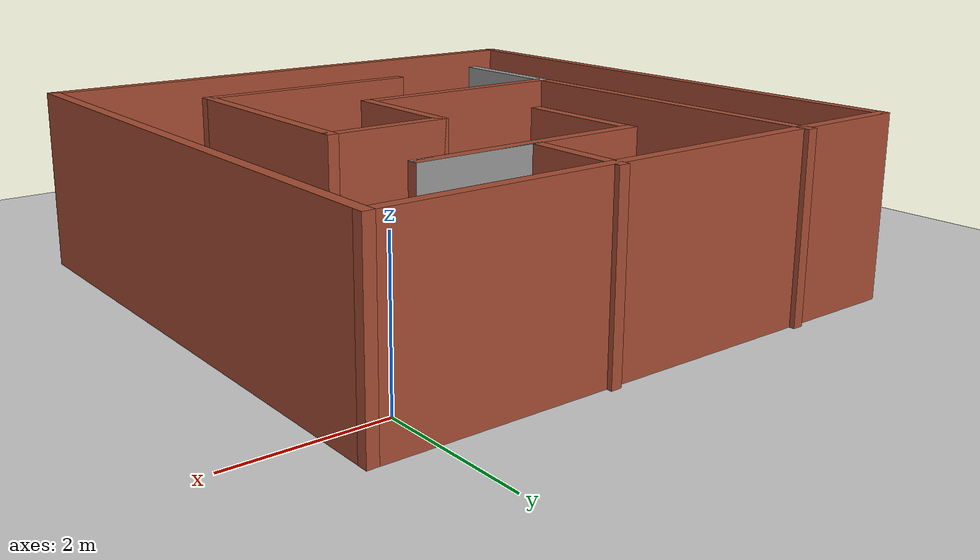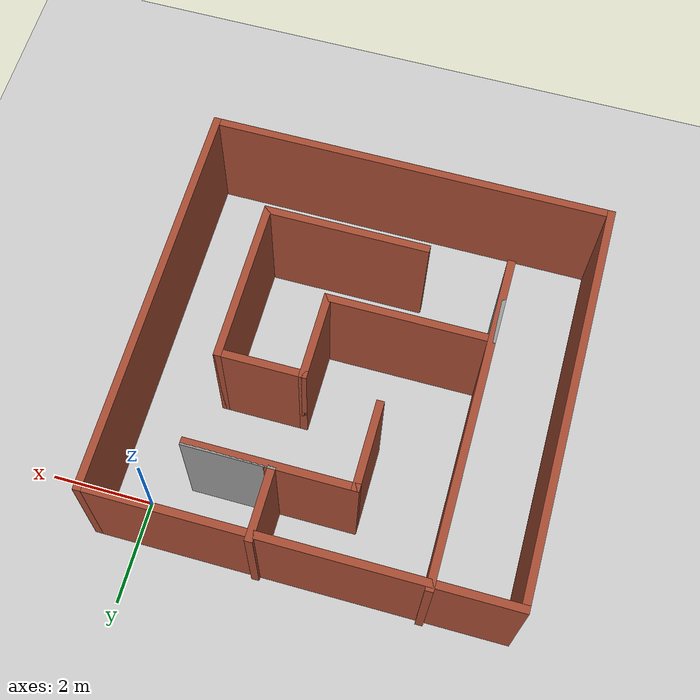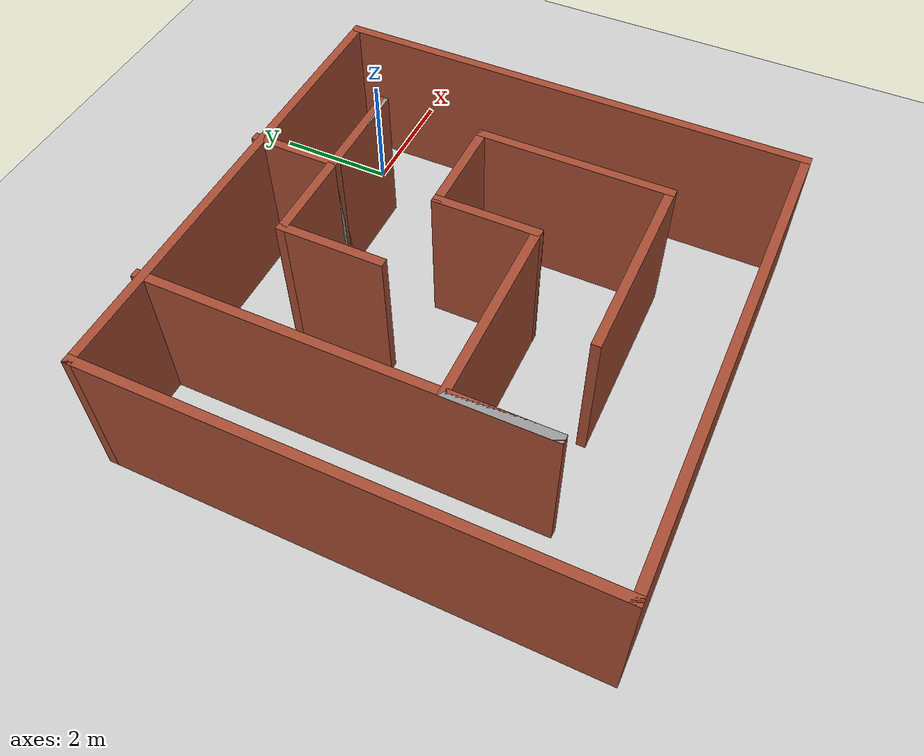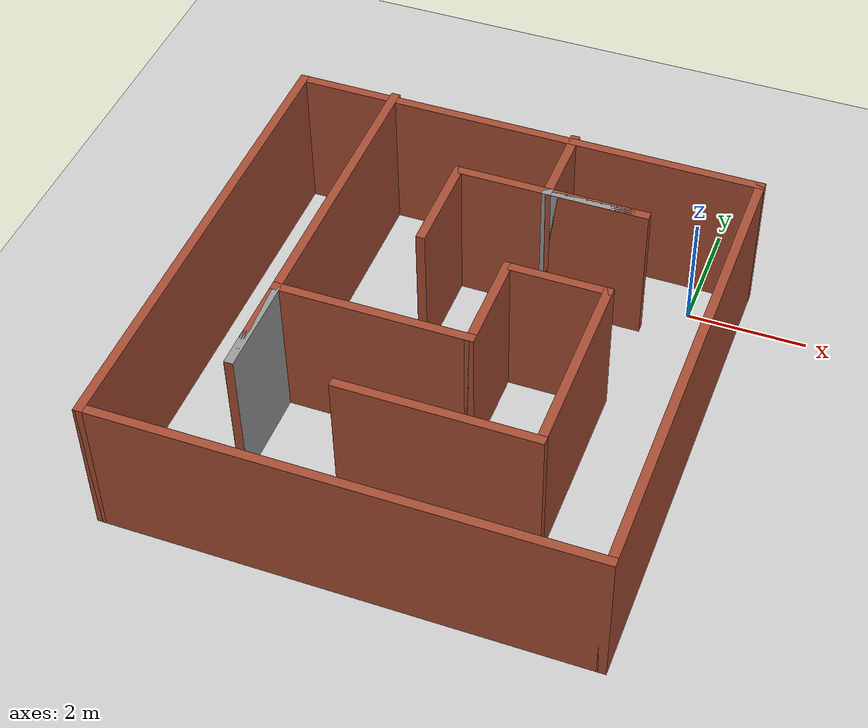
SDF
<sdf version="1.7">
 <world name="default">
  <light name="sun" type="directional">
   <pose>0 0 10 0 -0 0</pose>
   <diffuse>0.8 0.8 0.8 1</diffuse>
   <specular>0.2 0.2 0.2 1</specular>
   <attenuation>
    <range>1000</range>
    <constant>0.9</constant>
    <linear>0.01</linear>
    <quadratic>0.001</quadratic>
   </attenuation>
   <direction>-0.5 0.1 -0.9</direction>
   <spot><inner_angle>0</inner_angle><outer_angle>0</outer_angle><falloff>0</falloff></spot>
  </light>
  <model name="ground_plane">
   <static>1</static>
   <link name="link">
    <collision name="collision">
     <geometry><plane><normal>0 0 1</normal><size>100 100</size></plane></geometry>
     <surface>
      <contact><collide_bitmask>65535</collide_bitmask></contact>
      <friction><ode><mu>100</mu><mu2>50</mu2></ode></friction>
     </surface>
    </collision>
    <visual name="visual">
     <cast_shadows>0</cast_shadows>
     <geometry><plane><normal>0 0 1</normal><size>100 100</size></plane></geometry>
     <material>
      <script><uri>file://media/materials/scripts/gazebo.material</uri><name>Gazebo/Grey</name></script>
     </material>
    </visual>
   </link>
  </model>
  <gravity>0 0 -9.8</gravity>
  <magnetic_field>6e-06 2.3e-05 -4.2e-05</magnetic_field>
  <atmosphere type="adiabatic"/>
  <physics type="ode">
   <max_step_size>0.001</max_step_size>
   <real_time_factor>1</real_time_factor>
   <real_time_update_rate>1000</real_time_update_rate>
  </physics>
  <scene><ambient>0.4 0.4 0.4 1</ambient><background>0.7 0.7 0.7 1</background><shadows>1</shadows></scene>
  <spherical_coordinates>
   <surface_model>EARTH_WGS84</surface_model>
   <latitude_deg>0</latitude_deg>
   <longitude_deg>0</longitude_deg>
   <elevation>0</elevation>
   <heading_deg>0</heading_deg>
  </spherical_coordinates>
  <model name="Untitled">
   <pose>-3.15 -3.15 0 0 -0 0</pose>
   <link name="Wall_0">
    <collision name="Wall_0_Collision">
     <geometry><box><size>8 0.15 2.5</size></box></geometry>
     <pose>0 0 1.25 0 -0 0</pose>
    </collision>
    <visual name="Wall_0_Visual">
     <pose>0 0 1.25 0 -0 0</pose>
     <geometry><box><size>8 0.15 2.5</size></box></geometry>
     <material>
      <script><uri>file://media/materials/scripts/gazebo.material</uri><name>Gazebo/Bricks</name></script>
      <ambient>1 1 1 1</ambient>
     </material>
     <meta><layer>0</layer></meta>
    </visual>
    <pose>-0 -3.96059 0 0 -0 0</pose>
   </link>
   <link name="Wall_10">
    <collision name="Wall_10_Collision">
     <geometry><box><size>3.25 0.15 2.5</size></box></geometry>
     <pose>0 0 1.25 0 -0 0</pose>
    </collision>
    <visual name="Wall_10_Visual">
     <pose>0 0 1.25 0 -0 0</pose>
     <geometry><box><size>3.25 0.15 2.5</size></box></geometry>
     <material>
      <script><uri>file://media/materials/scripts/gazebo.material</uri><name>Gazebo/Bricks</name></script>
      <ambient>1 1 1 1</ambient>
     </material>
     <meta><layer>0</layer></meta>
    </visual>
    <pose>-0.772493 -0.789411 0 0 -0 0</pose>
   </link>
   <link name="Wall_11">
    <collision name="Wall_11_Collision">
     <geometry><box><size>1.75 0.15 2.5</size></box></geometry>
     <pose>0 0 1.25 0 -0 0</pose>
    </collision>
    <visual name="Wall_11_Visual">
     <pose>0 0 1.25 0 -0 0</pose>
     <geometry><box><size>1.75 0.15 2.5</size></box></geometry>
     <material>
      <script><uri>file://media/materials/scripts/gazebo.material</uri><name>Gazebo/Bricks</name></script>
      <ambient>1 1 1 1</ambient>
     </material>
     <meta><layer>0</layer></meta>
    </visual>
    <pose>0.777507 0.010589 0 0 -0 1.5708</pose>
   </link>
   <link name="Wall_12">
    <collision name="Wall_12_Collision">
     <geometry><box><size>1.75 0.15 2.5</size></box></geometry>
     <pose>0 0 1.25 0 -0 0</pose>
    </collision>
    <visual name="Wall_12_Visual">
     <pose>0 0 1.25 0 -0 0</pose>
     <geometry><box><size>1.75 0.15 2.5</size></box></geometry>
     <material>
      <script><uri>file://media/materials/scripts/gazebo.material</uri><name>Gazebo/Bricks</name></script>
      <ambient>1 1 1 1</ambient>
     </material>
     <meta><layer>0</layer></meta>
    </visual>
    <pose>1.57751 0.810589 0 0 -0 0</pose>
   </link>
   <link name="Wall_13">
    <collision name="Wall_13_Collision">
     <geometry><box><size>3.25 0.15 2.5</size></box></geometry>
     <pose>0 0 1.25 0 -0 0</pose>
    </collision>
    <visual name="Wall_13_Visual">
     <pose>0 0 1.25 0 -0 0</pose>
     <geometry><box><size>3.25 0.15 2.5</size></box></geometry>
     <material>
      <script><uri>file://media/materials/scripts/gazebo.material</uri><name>Gazebo/Bricks</name></script>
      <ambient>1 1 1 1</ambient>
     </material>
     <meta><layer>0</layer></meta>
    </visual>
    <pose>2.37751 -0.739411 0 0 -0 -1.5708</pose>
   </link>
   <link name="Wall_14">
    <collision name="Wall_14_Collision">
     <geometry><box><size>3.25 0.15 2.5</size></box></geometry>
     <pose>0 0 1.25 0 -0 0</pose>
    </collision>
    <visual name="Wall_14_Visual">
     <pose>0 0 1.25 0 -0 0</pose>
     <geometry><box><size>3.25 0.15 2.5</size></box></geometry>
     <material>
      <script><uri>file://media/materials/scripts/gazebo.material</uri><name>Gazebo/Bricks</name></script>
      <ambient>1 1 1 1</ambient>
     </material>
     <meta><layer>0</layer></meta>
    </visual>
    <pose>0.827507 -2.28941 0 0 -0 3.14159</pose>
   </link>
   <link name="Wall_16">
    <collision name="Wall_16_Collision">
     <geometry><box><size>1.5 0.15 2.5</size></box></geometry>
     <pose>0 0 1.25 0 -0 0</pose>
    </collision>
    <visual name="Wall_16_Visual">
     <pose>0 0 1.25 0 -0 0</pose>
     <geometry><box><size>1.5 0.15 2.5</size></box></geometry>
     <material>
      <script><uri>file://media/materials/scripts/gazebo.material</uri><name>Gazebo/Bricks</name></script>
      <ambient>1 1 1 1</ambient>
     </material>
     <meta><layer>0</layer></meta>
    </visual>
    <pose>0.815224 3.28559 0 0 -0 -1.5708</pose>
   </link>
   <link name="Wall_17">
    <collision name="Wall_17_Collision">
     <geometry><box><size>0.15 0.15 2.5</size></box></geometry>
     <pose>0 0 1.25 0 -0 0</pose>
    </collision>
    <visual name="Wall_17_Visual">
     <pose>0 0 1.25 0 -0 0</pose>
     <geometry><box><size>0.15 0.15 2.5</size></box></geometry>
     <material>
      <script><uri>file://media/materials/scripts/gazebo.material</uri><name>Gazebo/Grey</name></script>
      <ambient>1 1 1 1</ambient>
     </material>
     <meta><layer>0</layer></meta>
    </visual>
    <pose>0.815224 2.61059 0 0 -0 0</pose>
   </link>
   <link name="Wall_18">
    <collision name="Wall_18_Collision">
     <geometry><box><size>1.75 0.15 2.5</size></box></geometry>
     <pose>0 0 1.25 0 -0 0</pose>
    </collision>
    <visual name="Wall_18_Visual">
     <pose>0 0 1.25 0 -0 0</pose>
     <geometry><box><size>1.75 0.15 2.5</size></box></geometry>
     <material>
      <script><uri>file://media/materials/scripts/gazebo.material</uri><name>Gazebo/Grey</name></script>
      <ambient>1 1 1 1</ambient>
     </material>
     <meta><layer>0</layer></meta>
    </visual>
    <pose>1.61522 2.61059 0 0 -0 0</pose>
   </link>
   <link name="Wall_19">
    <collision name="Wall_19_Collision">
     <geometry><box><size>3.25 0.15 2.5</size></box></geometry>
     <pose>0 0 1.25 0 -0 0</pose>
    </collision>
    <visual name="Wall_19_Visual">
     <pose>0 0 1.25 0 -0 0</pose>
     <geometry><box><size>3.25 0.15 2.5</size></box></geometry>
     <material>
      <script><uri>file://media/materials/scripts/gazebo.material</uri><name>Gazebo/Bricks</name></script>
      <ambient>1 1 1 1</ambient>
     </material>
     <meta><layer>0</layer></meta>
    </visual>
    <pose>0.865224 2.61059 0 0 -0 3.14159</pose>
   </link>
   <link name="Wall_2">
    <collision name="Wall_2_Collision">
     <geometry><box><size>8 0.15 2.5</size></box></geometry>
     <pose>0 0 1.25 0 -0 0</pose>
    </collision>
    <visual name="Wall_2_Visual">
     <pose>0 0 1.25 0 -0 0</pose>
     <geometry><box><size>8 0.15 2.5</size></box></geometry>
     <material>
      <script><uri>file://media/materials/scripts/gazebo.material</uri><name>Gazebo/Grey</name></script>
      <ambient>1 1 1 1</ambient>
     </material>
     <meta><layer>0</layer></meta>
    </visual>
    <pose>-0 -3.96059 0 0 -0 0</pose>
   </link>
   <link name="Wall_20">
    <collision name="Wall_20_Collision">
     <geometry><box><size>1.75 0.15 2.5</size></box></geometry>
     <pose>0 0 1.25 0 -0 0</pose>
    </collision>
    <visual name="Wall_20_Visual">
     <pose>0 0 1.25 0 -0 0</pose>
     <geometry><box><size>1.75 0.15 2.5</size></box></geometry>
     <material>
      <script><uri>file://media/materials/scripts/gazebo.material</uri><name>Gazebo/Bricks</name></script>
      <ambient>1 1 1 1</ambient>
     </material>
     <meta><layer>0</layer></meta>
    </visual>
    <pose>-0.684776 1.81059 0 0 -0 -1.5708</pose>
   </link>
   <link name="Wall_4">
    <collision name="Wall_4_Collision">
     <geometry><box><size>8 0.15 2.5</size></box></geometry>
     <pose>0 0 1.25 0 -0 0</pose>
    </collision>
    <visual name="Wall_4_Visual">
     <pose>0 0 1.25 0 -0 0</pose>
     <geometry><box><size>8 0.15 2.5</size></box></geometry>
     <material>
      <script><uri>file://media/materials/scripts/gazebo.material</uri><name>Gazebo/Bricks</name></script>
      <ambient>1 1 1 1</ambient>
     </material>
     <meta><layer>0</layer></meta>
    </visual>
    <pose>3.925 -0.035589 0 0 -0 1.5708</pose>
   </link>
   <link name="Wall_5">
    <collision name="Wall_5_Collision">
     <geometry><box><size>8 0.15 2.5</size></box></geometry>
     <pose>0 0 1.25 0 -0 0</pose>
    </collision>
    <visual name="Wall_5_Visual">
     <pose>0 0 1.25 0 -0 0</pose>
     <geometry><box><size>8 0.15 2.5</size></box></geometry>
     <material>
      <script><uri>file://media/materials/scripts/gazebo.material</uri><name>Gazebo/Bricks</name></script>
      <ambient>1 1 1 1</ambient>
     </material>
     <meta><layer>0</layer></meta>
    </visual>
    <pose>-0 3.88941 0 0 -0 3.14159</pose>
   </link>
   <link name="Wall_6">
    <collision name="Wall_6_Collision">
     <geometry><box><size>8 0.15 2.5</size></box></geometry>
     <pose>0 0 1.25 0 -0 0</pose>
    </collision>
    <visual name="Wall_6_Visual">
     <pose>0 0 1.25 0 -0 0</pose>
     <geometry><box><size>8 0.15 2.5</size></box></geometry>
     <material>
      <script><uri>file://media/materials/scripts/gazebo.material</uri><name>Gazebo/Bricks</name></script>
      <ambient>1 1 1 1</ambient>
     </material>
     <meta><layer>0</layer></meta>
    </visual>
    <pose>-3.925 -0.035589 0 0 -0 -1.5708</pose>
   </link>
   <link name="Wall_8">
    <collision name="Wall_8_Collision">
     <geometry><box><size>6.5 0.15 2.5</size></box></geometry>
     <pose>0 0 1.25 0 -0 0</pose>
    </collision>
    <visual name="Wall_8_Visual">
     <pose>0 0 1.25 0 -0 0</pose>
     <geometry><box><size>6.5 0.15 2.5</size></box></geometry>
     <material>
      <script><uri>file://media/materials/scripts/gazebo.material</uri><name>Gazebo/Bricks</name></script>
      <ambient>1 1 1 1</ambient>
     </material>
     <meta><layer>0</layer></meta>
    </visual>
    <pose>-2.32249 0.785589 0 0 -0 -1.5708</pose>
   </link>
   <link name="Wall_9">
    <collision name="Wall_9_Collision">
     <geometry><box><size>1.75 0.15 2.5</size></box></geometry>
     <pose>0 0 1.25 0 -0 0</pose>
    </collision>
    <visual name="Wall_9_Visual">
     <pose>0 0 1.25 0 -0 0</pose>
     <geometry><box><size>1.75 0.15 2.5</size></box></geometry>
     <material>
      <script><uri>file://media/materials/scripts/gazebo.material</uri><name>Gazebo/Grey</name></script>
      <ambient>1 1 1 1</ambient>
     </material>
     <meta><layer>0</layer></meta>
    </visual>
    <pose>-2.32249 -1.58941 0 0 -0 1.5708</pose>
   </link>
   <static>1</static>
  </model>
 </world>
</sdf>
